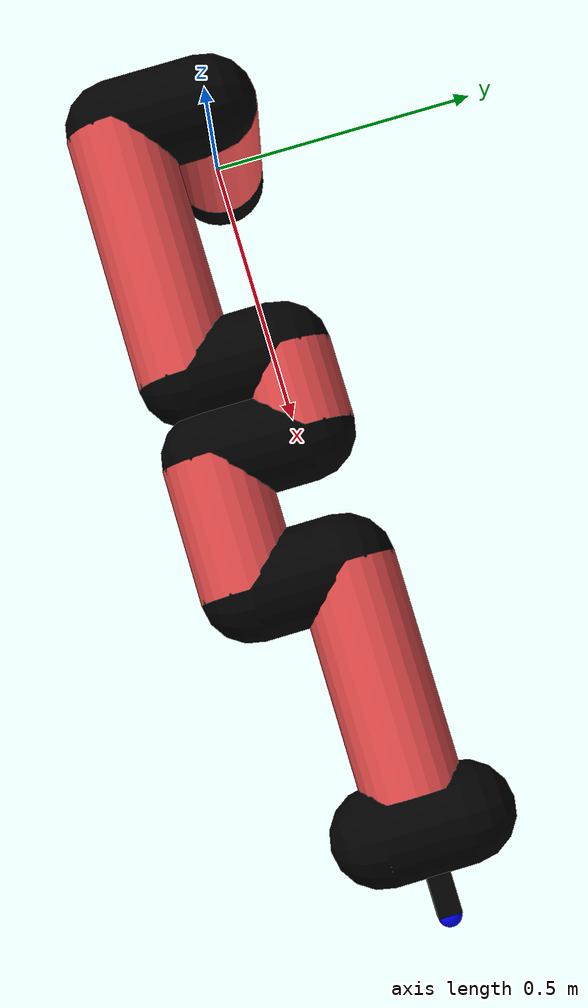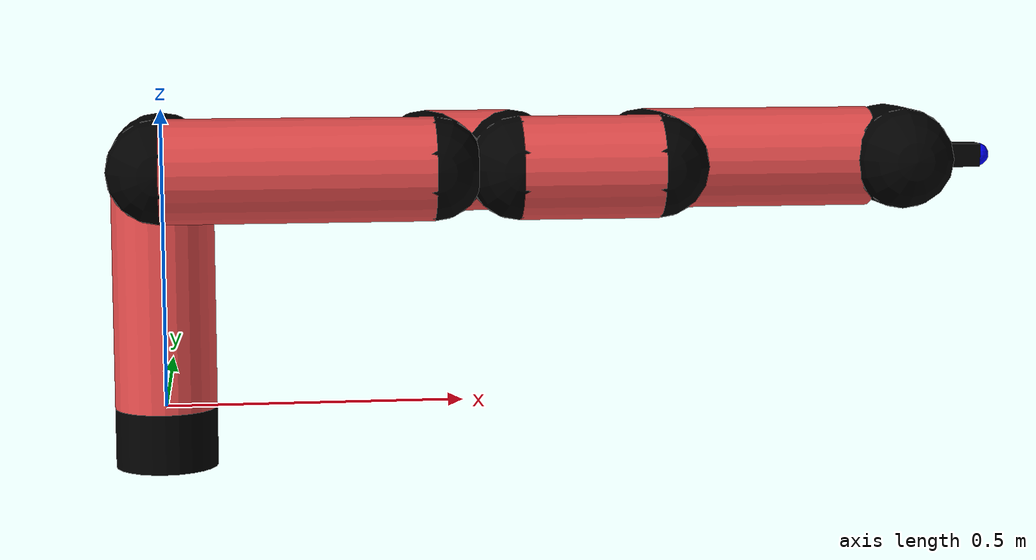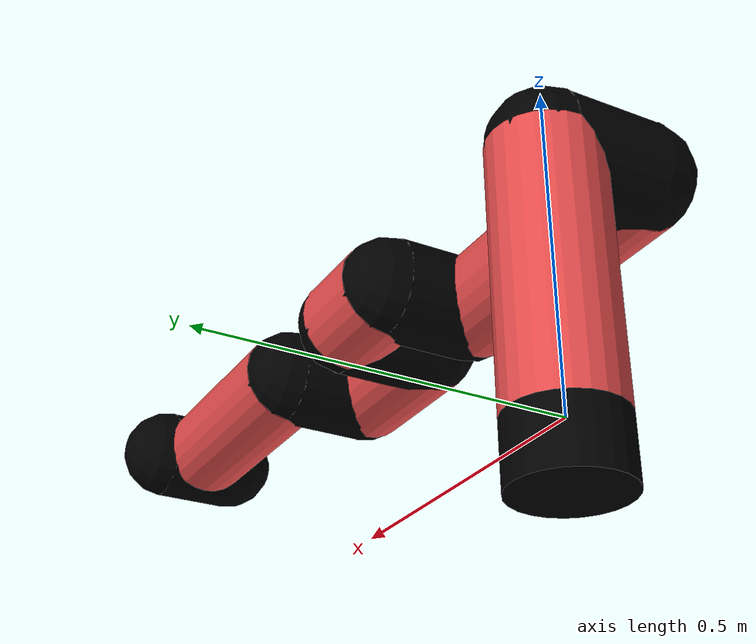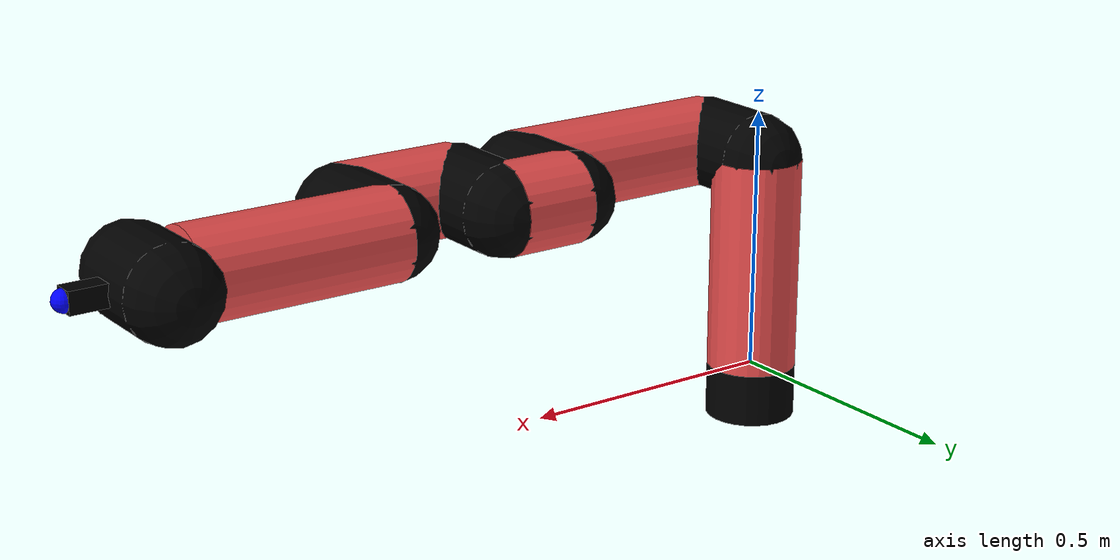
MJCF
<mujoco model="manipulator">
		<compiler angle="degree" coordinate="local" inertiafromgeom="auto" meshdir="meshes/"/>
		<option gravity="0 0 0" integrator="RK4" iterations="30" timestep="0.01"/>

		<default>
		<joint armature="1" limited="true" stiffness="10" damping="15" frictionloss="5.0"/>
		<geom conaffinity="1" condim="3" contype="1" friction=".5 .1 .1" margin="0.002"/>
		<motor ctrllimited="true"/>
		<position ctrllimited="true"/>
		</default>

		<asset>
		<texture builtin="gradient" height="100" rgb1="1.0 1.0 1.0" rgb2="1.0 1.0 1.0" type="skybox" width="100"/>
		<texture builtin="flat" height="32" name="arm_tex" rgb1="0.9 0.3 0.3" type="2d" width="32"/>
		<texture builtin="flat" height="32" name="gripper_tex" rgb1="0.0 0.0 0.0" type="cube" width="32"/>

		<material name="arm_mat" shininess="0.1" specular="0.1" texture="arm_tex"/>
		<material name="gripper_mat" shininess="1" specular="1" texture="gripper_tex"/>
		</asset>

		<worldbody>
		<light cutoff="45" diffuse=".8 .8 .8" dir="0 0.16 -1" directional="false" name="light" pos="0 -2.0 8.0" specular="0.3 0.3 0.3"/>

		<body name="base_link" pos="0 0 -0.1">
		<geom fromto="0 0 0 0 0 0.1" material="arm_mat" name="base_link" rgba="0.0 0.0 0.0 1" size="0.085" type="cylinder"/>
		</body>

		<body name="l1" pos="0 0 0">
<geom fromto="0 0 0 0 0 0.41" material="arm_mat" name="l1" rgba="0.9 0.3 0.3 1" size="0.085" type="cylinder"/>
<geom fromto="0 0 0.41 0 -0.16 0.41" material="arm_mat" name="l1_ex" rgba="0.0 0.0 0.0 1" size="0.085" type="capsule"/>
<joint axis="0 0 1" name="j1" pos="0 0 0" range="-90 90" damping="30.6" frictionloss="6.68"/>

<body name="l2" pos="0 -0.16 0.41">
<geom fromto="0 0 0 0.44 0 0" material="arm_mat" name="l2" rgba="0.9 0.3 0.3 1" size="0.085" type="cylinder"/>
<geom fromto="0.44 0 0 0.44 0.16 0" material="arm_mat" name="l2_ex" rgba="0.0 0.0 0.0 1" size="0.085" type="capsule"/>
<joint axis="0.0 1.0 0.0" name="j2" pos="0 0 0" range="-90 60" damping="32.73" frictionloss="7.85"/>

<body name="l3" pos="0.44 0.16 0">
<geom fromto="0 0 0 0.14 0 0" material="arm_mat" name="l3" rgba="0.9 0.3 0.3 1" size="0.085" type="cylinder"/>
<geom fromto="0.14 0 0 0.14 -0.16 0" material="arm_mat" name="l3_ex" rgba="0.0 0.0 0.0 1" size="0.085" type="capsule"/>
<joint axis="0.0 1.0 0.0" name="j3" pos="0 0 0" range="-30 60" damping="22.75" frictionloss="15.61"/>

<body name="l4" pos="0.14 -0.16 0">
<geom fromto="0 0 0 0.23 0 0" material="arm_mat" name="l4" rgba="0.9 0.3 0.3 1" size="0.085" type="cylinder"/>
<geom fromto="0.23 0 0 0.23 0.16 0" material="arm_mat" name="l4_ex" rgba="0.0 0.0 0.0 1" size="0.085" type="capsule"/>
<joint axis="0.0 1.0 0.0" name="j4" pos="0 0 0" range="-30 60" damping="42.91" frictionloss="7.72"/>

<body name="l5" pos="0.23 0.16 0">
<geom fromto="0 0 0 0.39 0 0" material="arm_mat" name="l5" rgba="0.9 0.3 0.3 1" size="0.085" type="cylinder"/>
<joint axis="0.0 1.0 0.0" name="j5" pos="0 0 0" range="-30 60" damping="26.98" frictionloss="7.03"/>

<body name="gripper" pos="0.39 0 0">
<geom fromto="0.05 -0.07 0 0.05 0.07 0" material="gripper_mat" name="gripper" rgba="0.0 0.0 0.0 1" size="0.085" type="capsule"/><joint axis="1 0 0" name="j6" pos="0 0 0" range="-90 90" damping="15" frictionloss="5.0"/><body name="finger" pos="0.1 0 0">
<geom fromto="0 0.0 0 0.1 0.0 0" material="gripper_mat" name="finger" rgba="0.0 0.0 0.0 1" size="0.020 0.06 0.06" type="box"/>
</body>
<site name="current" pos="0.2 0. 0.0" rgba="0. 0. 1.0 1" size="0.02" type="sphere"/>
</body>
</body>
</body>
</body>
</body>
</body>
</worldbody>
<actuator>
<motor ctrllimited="true" ctrlrange="-1.0 1.0" joint="j1" gear="94.26"/>
<motor ctrllimited="true" ctrlrange="-1.0 1.0" joint="j2" gear="92.57"/>
<motor ctrllimited="true" ctrlrange="-1.0 1.0" joint="j3" gear="116.05"/>
<motor ctrllimited="true" ctrlrange="-1.0 1.0" joint="j4" gear="122.17"/>
<motor ctrllimited="true" ctrlrange="-1.0 1.0" joint="j5" gear="32.81"/>
<motor ctrllimited="true" ctrlrange="-1.0 1.0" joint="j6" gear="80"/>
</actuator>
</mujoco>
